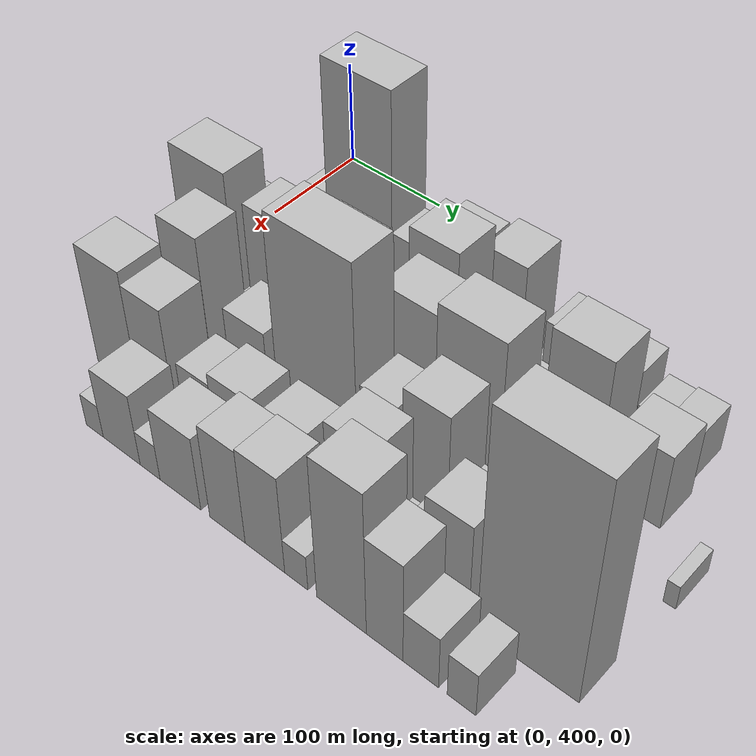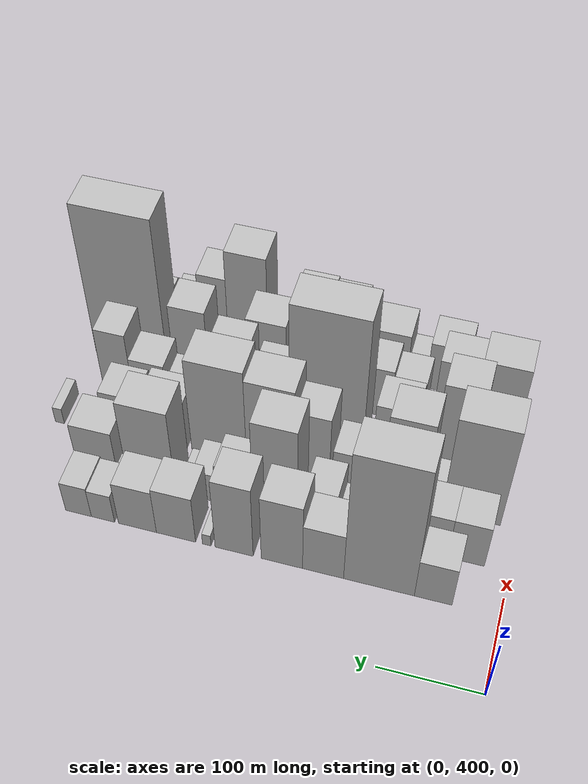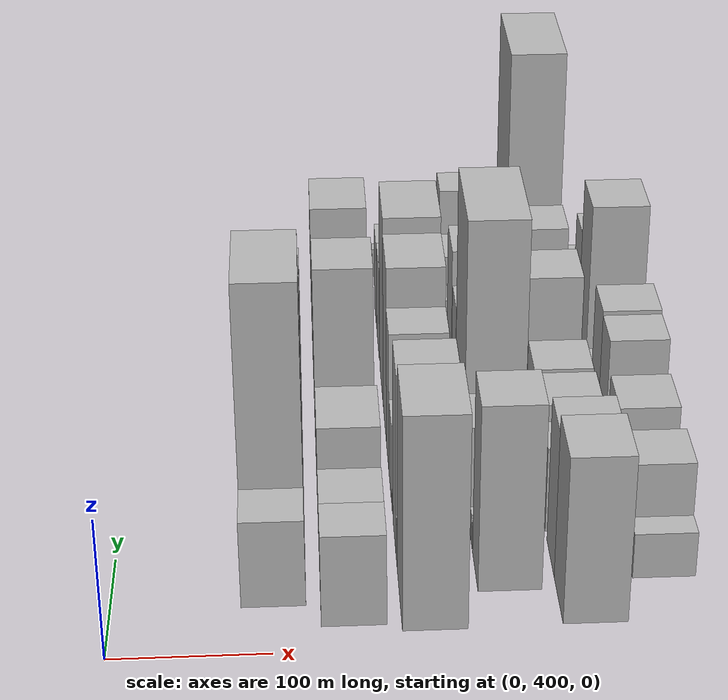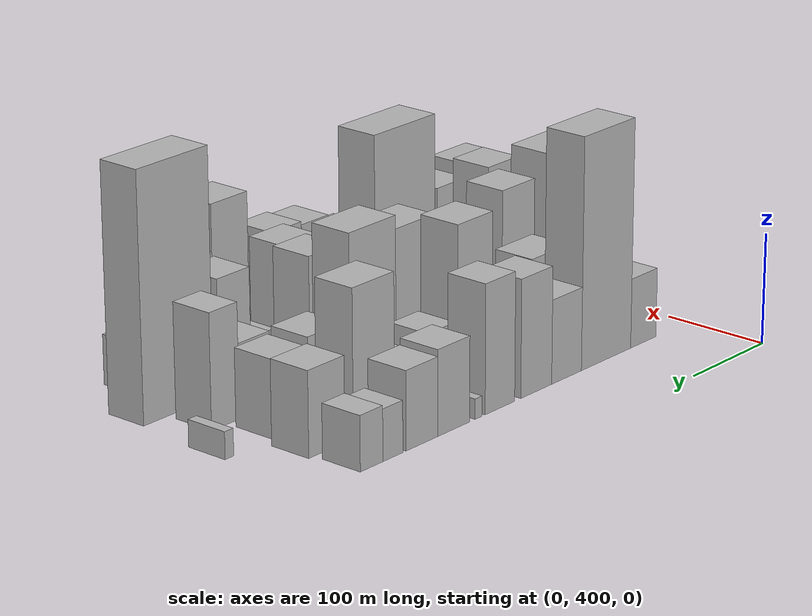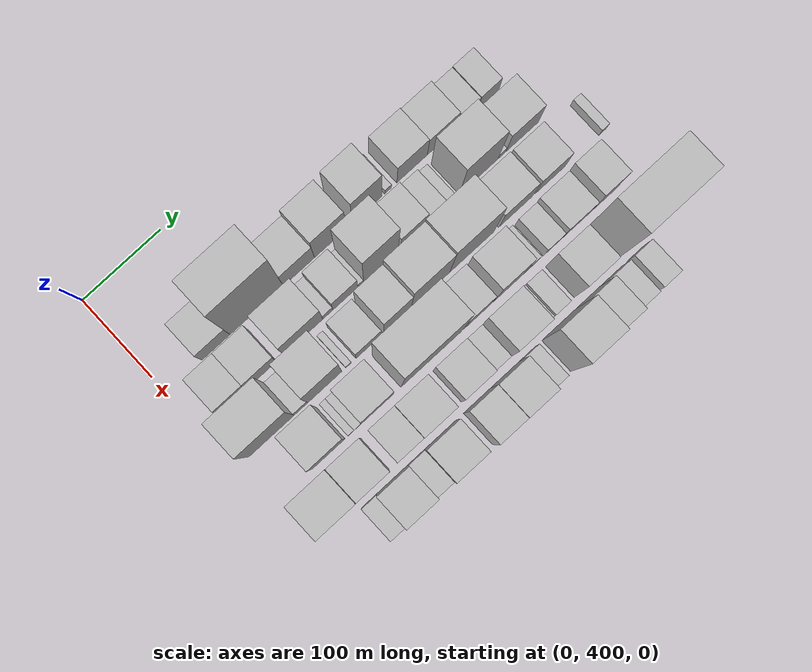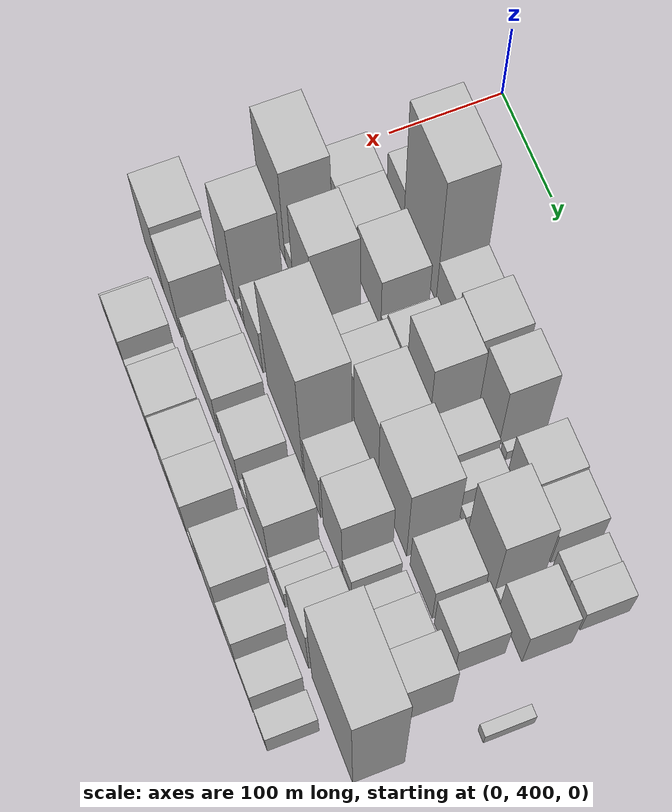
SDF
<sdf version="1.6">
 <world name="default">
  <model name="building_33">
   <static>1</static>
   <pose>100.0000 463.8958 0 0.000000 0.000000 0.000000</pose>
   <link name="link">
    <pose>0 0 31.50 0 0 0</pose>
    <collision name="collision"><geometry><box><size>40.0000 35.9964 63.0000</size></box></geometry></collision>
    <visual name="visual">
     <cast_shadows>0</cast_shadows>
     <geometry><box><size>40.0000 35.9964 63.0000</size></box></geometry>
     <material>
      <script>
       <uri>model://HANNAS_wall/materials/scripts</uri>
       <uri>model://HANNAS_wall/materials/textures</uri>
       <name>vrc/HANNAS_wall</name>
      </script>
     </material>
    </visual>
   </link>
  </model>
  <model name="building_34">
   <static>1</static>
   <pose>100.0000 516.1357 0 0.000000 0.000000 0.000000</pose>
   <link name="link">
    <pose>0 0 103.50 0 0 0</pose>
    <collision name="collision"><geometry><box><size>40.0000 68.4833 207.0000</size></box></geometry></collision>
    <visual name="visual">
     <cast_shadows>0</cast_shadows>
     <geometry><box><size>40.0000 68.4833 207.0000</size></box></geometry>
     <material>
      <script>
       <uri>model://HANNAS_wall/materials/scripts</uri>
       <uri>model://HANNAS_wall/materials/textures</uri>
       <name>vrc/HANNAS_wall</name>
      </script>
     </material>
    </visual>
   </link>
  </model>
  <model name="building_35">
   <static>1</static>
   <pose>100.0000 570.4830 0 0.000000 0.000000 0.000000</pose>
   <link name="link">
    <pose>0 0 37.50 0 0 0</pose>
    <collision name="collision"><geometry><box><size>40.0000 40.2113 75.0000</size></box></geometry></collision>
    <visual name="visual">
     <cast_shadows>0</cast_shadows>
     <geometry><box><size>40.0000 40.2113 75.0000</size></box></geometry>
     <material>
      <script>
       <uri>model://HANNAS_wall/materials/scripts</uri>
       <uri>model://HANNAS_wall/materials/textures</uri>
       <name>vrc/HANNAS_wall</name>
      </script>
     </material>
    </visual>
   </link>
  </model>
  <model name="building_36">
   <static>1</static>
   <pose>100.0000 611.0884 0 0.000000 0.000000 0.000000</pose>
   <link name="link">
    <pose>0 0 52.50 0 0 0</pose>
    <collision name="collision"><geometry><box><size>40.0000 40.9995 105.0000</size></box></geometry></collision>
    <visual name="visual">
     <cast_shadows>0</cast_shadows>
     <geometry><box><size>40.0000 40.9995 105.0000</size></box></geometry>
     <material>
      <script>
       <uri>model://HANNAS_wall/materials/scripts</uri>
       <uri>model://HANNAS_wall/materials/textures</uri>
       <name>vrc/HANNAS_wall</name>
      </script>
     </material>
    </visual>
   </link>
  </model>
  <model name="building_37">
   <static>1</static>
   <pose>100.0000 658.7133 0 0.000000 0.000000 0.000000</pose>
   <link name="link">
    <pose>0 0 57.00 0 0 0</pose>
    <collision name="collision"><geometry><box><size>40.0000 38.2504 114.0000</size></box></geometry></collision>
    <visual name="visual">
     <cast_shadows>0</cast_shadows>
     <geometry><box><size>40.0000 38.2504 114.0000</size></box></geometry>
     <material>
      <script>
       <uri>model://HANNAS_wall/materials/scripts</uri>
       <uri>model://HANNAS_wall/materials/textures</uri>
       <name>vrc/HANNAS_wall</name>
      </script>
     </material>
    </visual>
   </link>
  </model>
  <model name="building_38">
   <static>1</static>
   <pose>100.0000 686.2303 0 0.000000 0.000000 0.000000</pose>
   <link name="link">
    <pose>0 0 9.00 0 0 0</pose>
    <collision name="collision"><geometry><box><size>40.0000 8.7835 18.0000</size></box></geometry></collision>
    <visual name="visual">
     <cast_shadows>0</cast_shadows>
     <geometry><box><size>40.0000 8.7835 18.0000</size></box></geometry>
     <material>
      <script>
       <uri>model://HANNAS_wall/materials/scripts</uri>
       <uri>model://HANNAS_wall/materials/textures</uri>
       <name>vrc/HANNAS_wall</name>
      </script>
     </material>
    </visual>
   </link>
  </model>
  <model name="building_39">
   <static>1</static>
   <pose>100.0000 717.5890 0 0.000000 0.000000 0.000000</pose>
   <link name="link">
    <pose>0 0 37.50 0 0 0</pose>
    <collision name="collision"><geometry><box><size>40.0000 39.9340 75.0000</size></box></geometry></collision>
    <visual name="visual">
     <cast_shadows>0</cast_shadows>
     <geometry><box><size>40.0000 39.9340 75.0000</size></box></geometry>
     <material>
      <script>
       <uri>model://HANNAS_wall/materials/scripts</uri>
       <uri>model://HANNAS_wall/materials/textures</uri>
       <name>vrc/HANNAS_wall</name>
      </script>
     </material>
    </visual>
   </link>
  </model>
  <model name="building_40">
   <static>1</static>
   <pose>100.0000 757.1651 0 0.000000 0.000000 0.000000</pose>
   <link name="link">
    <pose>0 0 34.50 0 0 0</pose>
    <collision name="collision"><geometry><box><size>40.0000 39.2182 69.0000</size></box></geometry></collision>
    <visual name="visual">
     <cast_shadows>0</cast_shadows>
     <geometry><box><size>40.0000 39.2182 69.0000</size></box></geometry>
     <material>
      <script>
       <uri>model://HANNAS_wall/materials/scripts</uri>
       <uri>model://HANNAS_wall/materials/textures</uri>
       <name>vrc/HANNAS_wall</name>
      </script>
     </material>
    </visual>
   </link>
  </model>
  <model name="building_41">
   <static>1</static>
   <pose>100.0000 792.8322 0 0.000000 0.000000 0.000000</pose>
   <link name="link">
    <pose>0 0 22.50 0 0 0</pose>
    <collision name="collision"><geometry><box><size>40.0000 24.1159 45.0000</size></box></geometry></collision>
    <visual name="visual">
     <cast_shadows>0</cast_shadows>
     <geometry><box><size>40.0000 24.1159 45.0000</size></box></geometry>
     <material>
      <script>
       <uri>model://HANNAS_wall/materials/scripts</uri>
       <uri>model://HANNAS_wall/materials/textures</uri>
       <name>vrc/HANNAS_wall</name>
      </script>
     </material>
    </visual>
   </link>
  </model>
  <model name="building_42">
   <static>1</static>
   <pose>100.0000 818.3848 0 0.000000 0.000000 0.000000</pose>
   <link name="link">
    <pose>0 0 24.00 0 0 0</pose>
    <collision name="collision"><geometry><box><size>40.0000 26.9894 48.0000</size></box></geometry></collision>
    <visual name="visual">
     <cast_shadows>0</cast_shadows>
     <geometry><box><size>40.0000 26.9894 48.0000</size></box></geometry>
     <material>
      <script>
       <uri>model://HANNAS_wall/materials/scripts</uri>
       <uri>model://HANNAS_wall/materials/textures</uri>
       <name>vrc/HANNAS_wall</name>
      </script>
     </material>
    </visual>
   </link>
  </model>
  <model name="building_75">
   <static>1</static>
   <pose>149.0000 442.0141 0 0.000000 0.000000 0.000000</pose>
   <link name="link">
    <pose>0 0 33.00 0 0 0</pose>
    <collision name="collision"><geometry><box><size>40.0000 35.3231 66.0000</size></box></geometry></collision>
    <visual name="visual">
     <cast_shadows>0</cast_shadows>
     <geometry><box><size>40.0000 35.3231 66.0000</size></box></geometry>
     <material>
      <script>
       <uri>model://HANNAS_wall/materials/scripts</uri>
       <uri>model://HANNAS_wall/materials/textures</uri>
       <name>vrc/HANNAS_wall</name>
      </script>
     </material>
    </visual>
   </link>
  </model>
  <model name="building_76">
   <static>1</static>
   <pose>149.0000 478.5795 0 0.000000 0.000000 0.000000</pose>
   <link name="link">
    <pose>0 0 33.00 0 0 0</pose>
    <collision name="collision"><geometry><box><size>40.0000 37.8076 66.0000</size></box></geometry></collision>
    <visual name="visual">
     <cast_shadows>0</cast_shadows>
     <geometry><box><size>40.0000 37.8076 66.0000</size></box></geometry>
     <material>
      <script>
       <uri>model://HANNAS_wall/materials/scripts</uri>
       <uri>model://HANNAS_wall/materials/textures</uri>
       <name>vrc/HANNAS_wall</name>
      </script>
     </material>
    </visual>
   </link>
  </model>
  <model name="building_77">
   <static>1</static>
   <pose>149.0000 531.5656 0 0.000000 0.000000 0.000000</pose>
   <link name="link">
    <pose>0 0 45.00 0 0 0</pose>
    <collision name="collision"><geometry><box><size>40.0000 50.1646 90.0000</size></box></geometry></collision>
    <visual name="visual">
     <cast_shadows>0</cast_shadows>
     <geometry><box><size>40.0000 50.1646 90.0000</size></box></geometry>
     <material>
      <script>
       <uri>model://HANNAS_wall/materials/scripts</uri>
       <uri>model://HANNAS_wall/materials/textures</uri>
       <name>vrc/HANNAS_wall</name>
      </script>
     </material>
    </visual>
   </link>
  </model>
  <model name="building_78">
   <static>1</static>
   <pose>149.0000 563.2147 0 0.000000 0.000000 0.000000</pose>
   <link name="link">
    <pose>0 0 13.50 0 0 0</pose>
    <collision name="collision"><geometry><box><size>40.0000 13.1335 27.0000</size></box></geometry></collision>
    <visual name="visual">
     <cast_shadows>0</cast_shadows>
     <geometry><box><size>40.0000 13.1335 27.0000</size></box></geometry>
     <material>
      <script>
       <uri>model://HANNAS_wall/materials/scripts</uri>
       <uri>model://HANNAS_wall/materials/textures</uri>
       <name>vrc/HANNAS_wall</name>
      </script>
     </material>
    </visual>
   </link>
  </model>
  <model name="building_79">
   <static>1</static>
   <pose>149.0000 585.8208 0 0.000000 0.000000 0.000000</pose>
   <link name="link">
    <pose>0 0 30.00 0 0 0</pose>
    <collision name="collision"><geometry><box><size>40.0000 32.0787 60.0000</size></box></geometry></collision>
    <visual name="visual">
     <cast_shadows>0</cast_shadows>
     <geometry><box><size>40.0000 32.0787 60.0000</size></box></geometry>
     <material>
      <script>
       <uri>model://HANNAS_wall/materials/scripts</uri>
       <uri>model://HANNAS_wall/materials/textures</uri>
       <name>vrc/HANNAS_wall</name>
      </script>
     </material>
    </visual>
   </link>
  </model>
  <model name="building_80">
   <static>1</static>
   <pose>149.0000 605.6164 0 0.000000 0.000000 0.000000</pose>
   <link name="link">
    <pose>0 0 9.00 0 0 0</pose>
    <collision name="collision"><geometry><box><size>40.0000 7.5125 18.0000</size></box></geometry></collision>
    <visual name="visual">
     <cast_shadows>0</cast_shadows>
     <geometry><box><size>40.0000 7.5125 18.0000</size></box></geometry>
     <material>
      <script>
       <uri>model://HANNAS_wall/materials/scripts</uri>
       <uri>model://HANNAS_wall/materials/textures</uri>
       <name>vrc/HANNAS_wall</name>
      </script>
     </material>
    </visual>
   </link>
  </model>
  <model name="building_81">
   <static>1</static>
   <pose>149.0000 631.8215 0 0.000000 0.000000 0.000000</pose>
   <link name="link">
    <pose>0 0 73.50 0 0 0</pose>
    <collision name="collision"><geometry><box><size>40.0000 44.8977 147.0000</size></box></geometry></collision>
    <visual name="visual">
     <cast_shadows>0</cast_shadows>
     <geometry><box><size>40.0000 44.8977 147.0000</size></box></geometry>
     <material>
      <script>
       <uri>model://HANNAS_wall/materials/scripts</uri>
       <uri>model://HANNAS_wall/materials/textures</uri>
       <name>vrc/HANNAS_wall</name>
      </script>
     </material>
    </visual>
   </link>
  </model>
  <model name="building_82">
   <static>1</static>
   <pose>149.0000 674.8161 0 0.000000 0.000000 0.000000</pose>
   <link name="link">
    <pose>0 0 31.50 0 0 0</pose>
    <collision name="collision"><geometry><box><size>40.0000 35.0915 63.0000</size></box></geometry></collision>
    <visual name="visual">
     <cast_shadows>0</cast_shadows>
     <geometry><box><size>40.0000 35.0915 63.0000</size></box></geometry>
     <material>
      <script>
       <uri>model://HANNAS_wall/materials/scripts</uri>
       <uri>model://HANNAS_wall/materials/textures</uri>
       <name>vrc/HANNAS_wall</name>
      </script>
     </material>
    </visual>
   </link>
  </model>
  <model name="building_83">
   <static>1</static>
   <pose>149.0000 703.6260 0 0.000000 0.000000 0.000000</pose>
   <link name="link">
    <pose>0 0 22.50 0 0 0</pose>
    <collision name="collision"><geometry><box><size>40.0000 22.5281 45.0000</size></box></geometry></collision>
    <visual name="visual">
     <cast_shadows>0</cast_shadows>
     <geometry><box><size>40.0000 22.5281 45.0000</size></box></geometry>
     <material>
      <script>
       <uri>model://HANNAS_wall/materials/scripts</uri>
       <uri>model://HANNAS_wall/materials/textures</uri>
       <name>vrc/HANNAS_wall</name>
      </script>
     </material>
    </visual>
   </link>
  </model>
  <model name="building_84">
   <static>1</static>
   <pose>149.0000 723.0705 0 0.000000 0.000000 0.000000</pose>
   <link name="link">
    <pose>0 0 12.00 0 0 0</pose>
    <collision name="collision"><geometry><box><size>40.0000 10.3610 24.0000</size></box></geometry></collision>
    <visual name="visual">
     <cast_shadows>0</cast_shadows>
     <geometry><box><size>40.0000 10.3610 24.0000</size></box></geometry>
     <material>
      <script>
       <uri>model://HANNAS_wall/materials/scripts</uri>
       <uri>model://HANNAS_wall/materials/textures</uri>
       <name>vrc/HANNAS_wall</name>
      </script>
     </material>
    </visual>
   </link>
  </model>
  <model name="building_85">
   <static>1</static>
   <pose>149.0000 759.5131 0 0.000000 0.000000 0.000000</pose>
   <link name="link">
    <pose>0 0 64.50 0 0 0</pose>
    <collision name="collision"><geometry><box><size>40.0000 50.5241 129.0000</size></box></geometry></collision>
    <visual name="visual">
     <cast_shadows>0</cast_shadows>
     <geometry><box><size>40.0000 50.5241 129.0000</size></box></geometry>
     <material>
      <script>
       <uri>model://HANNAS_wall/materials/scripts</uri>
       <uri>model://HANNAS_wall/materials/textures</uri>
       <name>vrc/HANNAS_wall</name>
      </script>
     </material>
    </visual>
   </link>
  </model>
  <model name="building_86">
   <static>1</static>
   <pose>149.0000 789.8982 0 0.000000 0.000000 0.000000</pose>
   <link name="link">
    <pose>0 0 10.50 0 0 0</pose>
    <collision name="collision"><geometry><box><size>40.0000 10.2461 21.0000</size></box></geometry></collision>
    <visual name="visual">
     <cast_shadows>0</cast_shadows>
     <geometry><box><size>40.0000 10.2461 21.0000</size></box></geometry>
     <material>
      <script>
       <uri>model://HANNAS_wall/materials/scripts</uri>
       <uri>model://HANNAS_wall/materials/textures</uri>
       <name>vrc/HANNAS_wall</name>
      </script>
     </material>
    </visual>
   </link>
  </model>
  <model name="building_87">
   <static>1</static>
   <pose>149.0000 816.5176 0 0.000000 0.000000 0.000000</pose>
   <link name="link">
    <pose>0 0 37.50 0 0 0</pose>
    <collision name="collision"><geometry><box><size>40.0000 42.9927 75.0000</size></box></geometry></collision>
    <visual name="visual">
     <cast_shadows>0</cast_shadows>
     <geometry><box><size>40.0000 42.9927 75.0000</size></box></geometry>
     <material>
      <script>
       <uri>model://HANNAS_wall/materials/scripts</uri>
       <uri>model://HANNAS_wall/materials/textures</uri>
       <name>vrc/HANNAS_wall</name>
      </script>
     </material>
    </visual>
   </link>
  </model>
  <model name="building_121">
   <static>1</static>
   <pose>198.0000 446.6114 0 0.000000 0.000000 0.000000</pose>
   <link name="link">
    <pose>0 0 76.50 0 0 0</pose>
    <collision name="collision"><geometry><box><size>40.0000 58.0837 153.0000</size></box></geometry></collision>
    <visual name="visual">
     <cast_shadows>0</cast_shadows>
     <geometry><box><size>40.0000 58.0837 153.0000</size></box></geometry>
     <material>
      <script>
       <uri>model://HANNAS_wall/materials/scripts</uri>
       <uri>model://HANNAS_wall/materials/textures</uri>
       <name>vrc/HANNAS_wall</name>
      </script>
     </material>
    </visual>
   </link>
  </model>
  <model name="building_122">
   <static>1</static>
   <pose>198.0000 484.1990 0 0.000000 0.000000 0.000000</pose>
   <link name="link">
    <pose>0 0 16.50 0 0 0</pose>
    <collision name="collision"><geometry><box><size>40.0000 17.0915 33.0000</size></box></geometry></collision>
    <visual name="visual">
     <cast_shadows>0</cast_shadows>
     <geometry><box><size>40.0000 17.0915 33.0000</size></box></geometry>
     <material>
      <script>
       <uri>model://HANNAS_wall/materials/scripts</uri>
       <uri>model://HANNAS_wall/materials/textures</uri>
       <name>vrc/HANNAS_wall</name>
      </script>
     </material>
    </visual>
   </link>
  </model>
  <model name="building_123">
   <static>1</static>
   <pose>198.0000 514.5575 0 0.000000 0.000000 0.000000</pose>
   <link name="link">
    <pose>0 0 67.50 0 0 0</pose>
    <collision name="collision"><geometry><box><size>40.0000 43.6255 135.0000</size></box></geometry></collision>
    <visual name="visual">
     <cast_shadows>0</cast_shadows>
     <geometry><box><size>40.0000 43.6255 135.0000</size></box></geometry>
     <material>
      <script>
       <uri>model://HANNAS_wall/materials/scripts</uri>
       <uri>model://HANNAS_wall/materials/textures</uri>
       <name>vrc/HANNAS_wall</name>
      </script>
     </material>
    </visual>
   </link>
  </model>
  <model name="building_124">
   <static>1</static>
   <pose>198.0000 545.0130 0 0.000000 0.000000 0.000000</pose>
   <link name="link">
    <pose>0 0 7.50 0 0 0</pose>
    <collision name="collision"><geometry><box><size>40.0000 7.2856 15.0000</size></box></geometry></collision>
    <visual name="visual">
     <cast_shadows>0</cast_shadows>
     <geometry><box><size>40.0000 7.2856 15.0000</size></box></geometry>
     <material>
      <script>
       <uri>model://HANNAS_wall/materials/scripts</uri>
       <uri>model://HANNAS_wall/materials/textures</uri>
       <name>vrc/HANNAS_wall</name>
      </script>
     </material>
    </visual>
   </link>
  </model>
  <model name="building_125">
   <static>1</static>
   <pose>198.0000 570.8861 0 0.000000 0.000000 0.000000</pose>
   <link name="link">
    <pose>0 0 30.00 0 0 0</pose>
    <collision name="collision"><geometry><box><size>40.0000 32.4605 60.0000</size></box></geometry></collision>
    <visual name="visual">
     <cast_shadows>0</cast_shadows>
     <geometry><box><size>40.0000 32.4605 60.0000</size></box></geometry>
     <material>
      <script>
       <uri>model://HANNAS_wall/materials/scripts</uri>
       <uri>model://HANNAS_wall/materials/textures</uri>
       <name>vrc/HANNAS_wall</name>
      </script>
     </material>
    </visual>
   </link>
  </model>
  <model name="building_126">
   <static>1</static>
   <pose>198.0000 607.9021 0 0.000000 0.000000 0.000000</pose>
   <link name="link">
    <pose>0 0 54.00 0 0 0</pose>
    <collision name="collision"><geometry><box><size>40.0000 35.5715 108.0000</size></box></geometry></collision>
    <visual name="visual">
     <cast_shadows>0</cast_shadows>
     <geometry><box><size>40.0000 35.5715 108.0000</size></box></geometry>
     <material>
      <script>
       <uri>model://HANNAS_wall/materials/scripts</uri>
       <uri>model://HANNAS_wall/materials/textures</uri>
       <name>vrc/HANNAS_wall</name>
      </script>
     </material>
    </visual>
   </link>
  </model>
  <model name="building_127">
   <static>1</static>
   <pose>198.0000 650.6006 0 0.000000 0.000000 0.000000</pose>
   <link name="link">
    <pose>0 0 69.00 0 0 0</pose>
    <collision name="collision"><geometry><box><size>40.0000 49.8255 138.0000</size></box></geometry></collision>
    <visual name="visual">
     <cast_shadows>0</cast_shadows>
     <geometry><box><size>40.0000 49.8255 138.0000</size></box></geometry>
     <material>
      <script>
       <uri>model://HANNAS_wall/materials/scripts</uri>
       <uri>model://HANNAS_wall/materials/textures</uri>
       <name>vrc/HANNAS_wall</name>
      </script>
     </material>
    </visual>
   </link>
  </model>
  <model name="building_128">
   <static>1</static>
   <pose>198.0000 704.4383 0 0.000000 0.000000 0.000000</pose>
   <link name="link">
    <pose>0 0 75.00 0 0 0</pose>
    <collision name="collision"><geometry><box><size>40.0000 57.8499 150.0000</size></box></geometry></collision>
    <visual name="visual">
     <cast_shadows>0</cast_shadows>
     <geometry><box><size>40.0000 57.8499 150.0000</size></box></geometry>
     <material>
      <script>
       <uri>model://HANNAS_wall/materials/scripts</uri>
       <uri>model://HANNAS_wall/materials/textures</uri>
       <name>vrc/HANNAS_wall</name>
      </script>
     </material>
    </visual>
   </link>
  </model>
  <model name="building_129">
   <static>1</static>
   <pose>198.0000 762.3054 0 0.000000 0.000000 0.000000</pose>
   <link name="link">
    <pose>0 0 37.50 0 0 0</pose>
    <collision name="collision"><geometry><box><size>40.0000 43.8844 75.0000</size></box></geometry></collision>
    <visual name="visual">
     <cast_shadows>0</cast_shadows>
     <geometry><box><size>40.0000 43.8844 75.0000</size></box></geometry>
     <material>
      <script>
       <uri>model://HANNAS_wall/materials/scripts</uri>
       <uri>model://HANNAS_wall/materials/textures</uri>
       <name>vrc/HANNAS_wall</name>
      </script>
     </material>
    </visual>
   </link>
  </model>
  <model name="building_130">
   <static>1</static>
   <pose>198.0000 807.8751 0 0.000000 0.000000 0.000000</pose>
   <link name="link">
    <pose>0 0 34.50 0 0 0</pose>
    <collision name="collision"><geometry><box><size>40.0000 39.2550 69.0000</size></box></geometry></collision>
    <visual name="visual">
     <cast_shadows>0</cast_shadows>
     <geometry><box><size>40.0000 39.2550 69.0000</size></box></geometry>
     <material>
      <script>
       <uri>model://HANNAS_wall/materials/scripts</uri>
       <uri>model://HANNAS_wall/materials/textures</uri>
       <name>vrc/HANNAS_wall</name>
      </script>
     </material>
    </visual>
   </link>
  </model>
  <model name="building_131">
   <static>1</static>
   <pose>198.0000 877.4283 0 0.000000 0.000000 0.000000</pose>
   <link name="link">
    <pose>0 0 12.00 0 0 0</pose>
    <collision name="collision"><geometry><box><size>40.0000 9.9505 24.0000</size></box></geometry></collision>
    <visual name="visual">
     <cast_shadows>0</cast_shadows>
     <geometry><box><size>40.0000 9.9505 24.0000</size></box></geometry>
     <material>
      <script>
       <uri>model://HANNAS_wall/materials/scripts</uri>
       <uri>model://HANNAS_wall/materials/textures</uri>
       <name>vrc/HANNAS_wall</name>
      </script>
     </material>
    </visual>
   </link>
  </model>
  <model name="building_168">
   <static>1</static>
   <pose>247.0000 475.1241 0 0.000000 0.000000 0.000000</pose>
   <link name="link">
    <pose>0 0 67.50 0 0 0</pose>
    <collision name="collision"><geometry><box><size>40.0000 41.0963 135.0000</size></box></geometry></collision>
    <visual name="visual">
     <cast_shadows>0</cast_shadows>
     <geometry><box><size>40.0000 41.0963 135.0000</size></box></geometry>
     <material>
      <script>
       <uri>model://HANNAS_wall/materials/scripts</uri>
       <uri>model://HANNAS_wall/materials/textures</uri>
       <name>vrc/HANNAS_wall</name>
      </script>
     </material>
    </visual>
   </link>
  </model>
  <model name="building_169">
   <static>1</static>
   <pose>247.0000 503.4959 0 0.000000 0.000000 0.000000</pose>
   <link name="link">
    <pose>0 0 9.00 0 0 0</pose>
    <collision name="collision"><geometry><box><size>40.0000 7.6473 18.0000</size></box></geometry></collision>
    <visual name="visual">
     <cast_shadows>0</cast_shadows>
     <geometry><box><size>40.0000 7.6473 18.0000</size></box></geometry>
     <material>
      <script>
       <uri>model://HANNAS_wall/materials/scripts</uri>
       <uri>model://HANNAS_wall/materials/textures</uri>
       <name>vrc/HANNAS_wall</name>
      </script>
     </material>
    </visual>
   </link>
  </model>
  <model name="building_170">
   <static>1</static>
   <pose>247.0000 511.8338 0 0.000000 0.000000 0.000000</pose>
   <link name="link">
    <pose>0 0 10.50 0 0 0</pose>
    <collision name="collision"><geometry><box><size>40.0000 9.0287 21.0000</size></box></geometry></collision>
    <visual name="visual">
     <cast_shadows>0</cast_shadows>
     <geometry><box><size>40.0000 9.0287 21.0000</size></box></geometry>
     <material>
      <script>
       <uri>model://HANNAS_wall/materials/scripts</uri>
       <uri>model://HANNAS_wall/materials/textures</uri>
       <name>vrc/HANNAS_wall</name>
      </script>
     </material>
    </visual>
   </link>
  </model>
  <model name="building_171">
   <static>1</static>
   <pose>247.0000 536.9219 0 0.000000 0.000000 0.000000</pose>
   <link name="link">
    <pose>0 0 40.50 0 0 0</pose>
    <collision name="collision"><geometry><box><size>40.0000 41.1475 81.0000</size></box></geometry></collision>
    <visual name="visual">
     <cast_shadows>0</cast_shadows>
     <geometry><box><size>40.0000 41.1475 81.0000</size></box></geometry>
     <material>
      <script>
       <uri>model://HANNAS_wall/materials/scripts</uri>
       <uri>model://HANNAS_wall/materials/textures</uri>
       <name>vrc/HANNAS_wall</name>
      </script>
     </material>
    </visual>
   </link>
  </model>
  <model name="building_172">
   <static>1</static>
   <pose>247.0000 606.4196 0 0.000000 0.000000 0.000000</pose>
   <link name="link">
    <pose>0 0 100.50 0 0 0</pose>
    <collision name="collision"><geometry><box><size>40.0000 77.8477 201.0000</size></box></geometry></collision>
    <visual name="visual">
     <cast_shadows>0</cast_shadows>
     <geometry><box><size>40.0000 77.8477 201.0000</size></box></geometry>
     <material>
      <script>
       <uri>model://HANNAS_wall/materials/scripts</uri>
       <uri>model://HANNAS_wall/materials/textures</uri>
       <name>vrc/HANNAS_wall</name>
      </script>
     </material>
    </visual>
   </link>
  </model>
  <model name="building_173">
   <static>1</static>
   <pose>247.0000 665.8490 0 0.000000 0.000000 0.000000</pose>
   <link name="link">
    <pose>0 0 46.50 0 0 0</pose>
    <collision name="collision"><geometry><box><size>40.0000 33.0111 93.0000</size></box></geometry></collision>
    <visual name="visual">
     <cast_shadows>0</cast_shadows>
     <geometry><box><size>40.0000 33.0111 93.0000</size></box></geometry>
     <material>
      <script>
       <uri>model://HANNAS_wall/materials/scripts</uri>
       <uri>model://HANNAS_wall/materials/textures</uri>
       <name>vrc/HANNAS_wall</name>
      </script>
     </material>
    </visual>
   </link>
  </model>
  <model name="building_174">
   <static>1</static>
   <pose>247.0000 707.5844 0 0.000000 0.000000 0.000000</pose>
   <link name="link">
    <pose>0 0 58.50 0 0 0</pose>
    <collision name="collision"><geometry><box><size>40.0000 40.4597 117.0000</size></box></geometry></collision>
    <visual name="visual">
     <cast_shadows>0</cast_shadows>
     <geometry><box><size>40.0000 40.4597 117.0000</size></box></geometry>
     <material>
      <script>
       <uri>model://HANNAS_wall/materials/scripts</uri>
       <uri>model://HANNAS_wall/materials/textures</uri>
       <name>vrc/HANNAS_wall</name>
      </script>
     </material>
    </visual>
   </link>
  </model>
  <model name="building_175">
   <static>1</static>
   <pose>247.0000 736.8570 0 0.000000 0.000000 0.000000</pose>
   <link name="link">
    <pose>0 0 18.00 0 0 0</pose>
    <collision name="collision"><geometry><box><size>40.0000 18.0855 36.0000</size></box></geometry></collision>
    <visual name="visual">
     <cast_shadows>0</cast_shadows>
     <geometry><box><size>40.0000 18.0855 36.0000</size></box></geometry>
     <material>
      <script>
       <uri>model://HANNAS_wall/materials/scripts</uri>
       <uri>model://HANNAS_wall/materials/textures</uri>
       <name>vrc/HANNAS_wall</name>
      </script>
     </material>
    </visual>
   </link>
  </model>
  <model name="building_176">
   <static>1</static>
   <pose>247.0000 764.6860 0 0.000000 0.000000 0.000000</pose>
   <link name="link">
    <pose>0 0 21.00 0 0 0</pose>
    <collision name="collision"><geometry><box><size>40.0000 23.5726 42.0000</size></box></geometry></collision>
    <visual name="visual">
     <cast_shadows>0</cast_shadows>
     <geometry><box><size>40.0000 23.5726 42.0000</size></box></geometry>
     <material>
      <script>
       <uri>model://HANNAS_wall/materials/scripts</uri>
       <uri>model://HANNAS_wall/materials/textures</uri>
       <name>vrc/HANNAS_wall</name>
      </script>
     </material>
    </visual>
   </link>
  </model>
  <model name="building_177">
   <static>1</static>
   <pose>247.0000 795.1906 0 0.000000 0.000000 0.000000</pose>
   <link name="link">
    <pose>0 0 33.00 0 0 0</pose>
    <collision name="collision"><geometry><box><size>40.0000 37.4366 66.0000</size></box></geometry></collision>
    <visual name="visual">
     <cast_shadows>0</cast_shadows>
     <geometry><box><size>40.0000 37.4366 66.0000</size></box></geometry>
     <material>
      <script>
       <uri>model://HANNAS_wall/materials/scripts</uri>
       <uri>model://HANNAS_wall/materials/textures</uri>
       <name>vrc/HANNAS_wall</name>
      </script>
     </material>
    </visual>
   </link>
  </model>
  <model name="building_178">
   <static>1</static>
   <pose>247.0000 830.2362 0 0.000000 0.000000 0.000000</pose>
   <link name="link">
    <pose>0 0 51.00 0 0 0</pose>
    <collision name="collision"><geometry><box><size>40.0000 32.6545 102.0000</size></box></geometry></collision>
    <visual name="visual">
     <cast_shadows>0</cast_shadows>
     <geometry><box><size>40.0000 32.6545 102.0000</size></box></geometry>
     <material>
      <script>
       <uri>model://HANNAS_wall/materials/scripts</uri>
       <uri>model://HANNAS_wall/materials/textures</uri>
       <name>vrc/HANNAS_wall</name>
      </script>
     </material>
    </visual>
   </link>
  </model>
  <model name="building_212">
   <static>1</static>
   <pose>296.0000 443.0182 0 0.000000 0.000000 0.000000</pose>
   <link name="link">
    <pose>0 0 60.00 0 0 0</pose>
    <collision name="collision"><geometry><box><size>40.0000 47.1544 120.0000</size></box></geometry></collision>
    <visual name="visual">
     <cast_shadows>0</cast_shadows>
     <geometry><box><size>40.0000 47.1544 120.0000</size></box></geometry>
     <material>
      <script>
       <uri>model://HANNAS_wall/materials/scripts</uri>
       <uri>model://HANNAS_wall/materials/textures</uri>
       <name>vrc/HANNAS_wall</name>
      </script>
     </material>
    </visual>
   </link>
  </model>
  <model name="building_213">
   <static>1</static>
   <pose>296.0000 486.7247 0 0.000000 0.000000 0.000000</pose>
   <link name="link">
    <pose>0 0 54.00 0 0 0</pose>
    <collision name="collision"><geometry><box><size>40.0000 40.2586 108.0000</size></box></geometry></collision>
    <visual name="visual">
     <cast_shadows>0</cast_shadows>
     <geometry><box><size>40.0000 40.2586 108.0000</size></box></geometry>
     <material>
      <script>
       <uri>model://HANNAS_wall/materials/scripts</uri>
       <uri>model://HANNAS_wall/materials/textures</uri>
       <name>vrc/HANNAS_wall</name>
      </script>
     </material>
    </visual>
   </link>
  </model>
  <model name="building_214">
   <static>1</static>
   <pose>296.0000 533.3447 0 0.000000 0.000000 0.000000</pose>
   <link name="link">
    <pose>0 0 31.50 0 0 0</pose>
    <collision name="collision"><geometry><box><size>40.0000 32.9815 63.0000</size></box></geometry></collision>
    <visual name="visual">
     <cast_shadows>0</cast_shadows>
     <geometry><box><size>40.0000 32.9815 63.0000</size></box></geometry>
     <material>
      <script>
       <uri>model://HANNAS_wall/materials/scripts</uri>
       <uri>model://HANNAS_wall/materials/textures</uri>
       <name>vrc/HANNAS_wall</name>
      </script>
     </material>
    </visual>
   </link>
  </model>
  <model name="building_215">
   <static>1</static>
   <pose>296.0000 570.5655 0 0.000000 0.000000 0.000000</pose>
   <link name="link">
    <pose>0 0 37.50 0 0 0</pose>
    <collision name="collision"><geometry><box><size>40.0000 41.4600 75.0000</size></box></geometry></collision>
    <visual name="visual">
     <cast_shadows>0</cast_shadows>
     <geometry><box><size>40.0000 41.4600 75.0000</size></box></geometry>
     <material>
      <script>
       <uri>model://HANNAS_wall/materials/scripts</uri>
       <uri>model://HANNAS_wall/materials/textures</uri>
       <name>vrc/HANNAS_wall</name>
      </script>
     </material>
    </visual>
   </link>
  </model>
  <model name="building_216">
   <static>1</static>
   <pose>296.0000 619.8694 0 0.000000 0.000000 0.000000</pose>
   <link name="link">
    <pose>0 0 36.00 0 0 0</pose>
    <collision name="collision"><geometry><box><size>40.0000 39.1478 72.0000</size></box></geometry></collision>
    <visual name="visual">
     <cast_shadows>0</cast_shadows>
     <geometry><box><size>40.0000 39.1478 72.0000</size></box></geometry>
     <material>
      <script>
       <uri>model://HANNAS_wall/materials/scripts</uri>
       <uri>model://HANNAS_wall/materials/textures</uri>
       <name>vrc/HANNAS_wall</name>
      </script>
     </material>
    </visual>
   </link>
  </model>
  <model name="building_217">
   <static>1</static>
   <pose>296.0000 652.2119 0 0.000000 0.000000 0.000000</pose>
   <link name="link">
    <pose>0 0 16.50 0 0 0</pose>
    <collision name="collision"><geometry><box><size>40.0000 19.5373 33.0000</size></box></geometry></collision>
    <visual name="visual">
     <cast_shadows>0</cast_shadows>
     <geometry><box><size>40.0000 19.5373 33.0000</size></box></geometry>
     <material>
      <script>
       <uri>model://HANNAS_wall/materials/scripts</uri>
       <uri>model://HANNAS_wall/materials/textures</uri>
       <name>vrc/HANNAS_wall</name>
      </script>
     </material>
    </visual>
   </link>
  </model>
  <model name="building_218">
   <static>1</static>
   <pose>296.0000 683.0886 0 0.000000 0.000000 0.000000</pose>
   <link name="link">
    <pose>0 0 54.00 0 0 0</pose>
    <collision name="collision"><geometry><box><size>40.0000 42.2160 108.0000</size></box></geometry></collision>
    <visual name="visual">
     <cast_shadows>0</cast_shadows>
     <geometry><box><size>40.0000 42.2160 108.0000</size></box></geometry>
     <material>
      <script>
       <uri>model://HANNAS_wall/materials/scripts</uri>
       <uri>model://HANNAS_wall/materials/textures</uri>
       <name>vrc/HANNAS_wall</name>
      </script>
     </material>
    </visual>
   </link>
  </model>
  <model name="building_219">
   <static>1</static>
   <pose>296.0000 710.9089 0 0.000000 0.000000 0.000000</pose>
   <link name="link">
    <pose>0 0 13.50 0 0 0</pose>
    <collision name="collision"><geometry><box><size>40.0000 13.4247 27.0000</size></box></geometry></collision>
    <visual name="visual">
     <cast_shadows>0</cast_shadows>
     <geometry><box><size>40.0000 13.4247 27.0000</size></box></geometry>
     <material>
      <script>
       <uri>model://HANNAS_wall/materials/scripts</uri>
       <uri>model://HANNAS_wall/materials/textures</uri>
       <name>vrc/HANNAS_wall</name>
      </script>
     </material>
    </visual>
   </link>
  </model>
  <model name="building_220">
   <static>1</static>
   <pose>296.0000 727.4066 0 0.000000 0.000000 0.000000</pose>
   <link name="link">
    <pose>0 0 19.50 0 0 0</pose>
    <collision name="collision"><geometry><box><size>40.0000 19.5707 39.0000</size></box></geometry></collision>
    <visual name="visual">
     <cast_shadows>0</cast_shadows>
     <geometry><box><size>40.0000 19.5707 39.0000</size></box></geometry>
     <material>
      <script>
       <uri>model://HANNAS_wall/materials/scripts</uri>
       <uri>model://HANNAS_wall/materials/textures</uri>
       <name>vrc/HANNAS_wall</name>
      </script>
     </material>
    </visual>
   </link>
  </model>
  <model name="building_221">
   <static>1</static>
   <pose>296.0000 766.6545 0 0.000000 0.000000 0.000000</pose>
   <link name="link">
    <pose>0 0 51.00 0 0 0</pose>
    <collision name="collision"><geometry><box><size>40.0000 38.9251 102.0000</size></box></geometry></collision>
    <visual name="visual">
     <cast_shadows>0</cast_shadows>
     <geometry><box><size>40.0000 38.9251 102.0000</size></box></geometry>
     <material>
      <script>
       <uri>model://HANNAS_wall/materials/scripts</uri>
       <uri>model://HANNAS_wall/materials/textures</uri>
       <name>vrc/HANNAS_wall</name>
      </script>
     </material>
    </visual>
   </link>
  </model>
  <model name="building_222">
   <static>1</static>
   <pose>296.0000 833.8933 0 0.000000 0.000000 0.000000</pose>
   <link name="link">
    <pose>0 0 109.50 0 0 0</pose>
    <collision name="collision"><geometry><box><size>40.0000 81.5524 219.0000</size></box></geometry></collision>
    <visual name="visual">
     <cast_shadows>0</cast_shadows>
     <geometry><box><size>40.0000 81.5524 219.0000</size></box></geometry>
     <material>
      <script>
       <uri>model://HANNAS_wall/materials/scripts</uri>
       <uri>model://HANNAS_wall/materials/textures</uri>
       <name>vrc/HANNAS_wall</name>
      </script>
     </material>
    </visual>
   </link>
  </model>
  <model name="building_258">
   <static>1</static>
   <pose>345.0000 472.9228 0 0.000000 0.000000 0.000000</pose>
   <link name="link">
    <pose>0 0 16.50 0 0 0</pose>
    <collision name="collision"><geometry><box><size>40.0000 19.0335 33.0000</size></box></geometry></collision>
    <visual name="visual">
     <cast_shadows>0</cast_shadows>
     <geometry><box><size>40.0000 19.0335 33.0000</size></box></geometry>
     <material>
      <script>
       <uri>model://HANNAS_wall/materials/scripts</uri>
       <uri>model://HANNAS_wall/materials/textures</uri>
       <name>vrc/HANNAS_wall</name>
      </script>
     </material>
    </visual>
   </link>
  </model>
  <model name="building_259">
   <static>1</static>
   <pose>345.0000 502.5234 0 0.000000 0.000000 0.000000</pose>
   <link name="link">
    <pose>0 0 36.00 0 0 0</pose>
    <collision name="collision"><geometry><box><size>40.0000 40.1677 72.0000</size></box></geometry></collision>
    <visual name="visual">
     <cast_shadows>0</cast_shadows>
     <geometry><box><size>40.0000 40.1677 72.0000</size></box></geometry>
     <material>
      <script>
       <uri>model://HANNAS_wall/materials/scripts</uri>
       <uri>model://HANNAS_wall/materials/textures</uri>
       <name>vrc/HANNAS_wall</name>
      </script>
     </material>
    </visual>
   </link>
  </model>
  <model name="building_260">
   <static>1</static>
   <pose>345.0000 533.1188 0 0.000000 0.000000 0.000000</pose>
   <link name="link">
    <pose>0 0 18.00 0 0 0</pose>
    <collision name="collision"><geometry><box><size>40.0000 21.0232 36.0000</size></box></geometry></collision>
    <visual name="visual">
     <cast_shadows>0</cast_shadows>
     <geometry><box><size>40.0000 21.0232 36.0000</size></box></geometry>
     <material>
      <script>
       <uri>model://HANNAS_wall/materials/scripts</uri>
       <uri>model://HANNAS_wall/materials/textures</uri>
       <name>vrc/HANNAS_wall</name>
      </script>
     </material>
    </visual>
   </link>
  </model>
  <model name="building_261">
   <static>1</static>
   <pose>345.0000 564.5662 0 0.000000 0.000000 0.000000</pose>
   <link name="link">
    <pose>0 0 37.50 0 0 0</pose>
    <collision name="collision"><geometry><box><size>40.0000 41.8716 75.0000</size></box></geometry></collision>
    <visual name="visual">
     <cast_shadows>0</cast_shadows>
     <geometry><box><size>40.0000 41.8716 75.0000</size></box></geometry>
     <material>
      <script>
       <uri>model://HANNAS_wall/materials/scripts</uri>
       <uri>model://HANNAS_wall/materials/textures</uri>
       <name>vrc/HANNAS_wall</name>
      </script>
     </material>
    </visual>
   </link>
  </model>
  <model name="building_262">
   <static>1</static>
   <pose>345.0000 611.9518 0 0.000000 0.000000 0.000000</pose>
   <link name="link">
    <pose>0 0 48.00 0 0 0</pose>
    <collision name="collision"><geometry><box><size>40.0000 34.8994 96.0000</size></box></geometry></collision>
    <visual name="visual">
     <cast_shadows>0</cast_shadows>
     <geometry><box><size>40.0000 34.8994 96.0000</size></box></geometry>
     <material>
      <script>
       <uri>model://HANNAS_wall/materials/scripts</uri>
       <uri>model://HANNAS_wall/materials/textures</uri>
       <name>vrc/HANNAS_wall</name>
      </script>
     </material>
    </visual>
   </link>
  </model>
  <model name="building_263">
   <static>1</static>
   <pose>345.0000 648.1949 0 0.000000 0.000000 0.000000</pose>
   <link name="link">
    <pose>0 0 49.50 0 0 0</pose>
    <collision name="collision"><geometry><box><size>40.0000 37.5869 99.0000</size></box></geometry></collision>
    <visual name="visual">
     <cast_shadows>0</cast_shadows>
     <geometry><box><size>40.0000 37.5869 99.0000</size></box></geometry>
     <material>
      <script>
       <uri>model://HANNAS_wall/materials/scripts</uri>
       <uri>model://HANNAS_wall/materials/textures</uri>
       <name>vrc/HANNAS_wall</name>
      </script>
     </material>
    </visual>
   </link>
  </model>
  <model name="building_264">
   <static>1</static>
   <pose>345.0000 677.6976 0 0.000000 0.000000 0.000000</pose>
   <link name="link">
    <pose>0 0 18.00 0 0 0</pose>
    <collision name="collision"><geometry><box><size>40.0000 21.4185 36.0000</size></box></geometry></collision>
    <visual name="visual">
     <cast_shadows>0</cast_shadows>
     <geometry><box><size>40.0000 21.4185 36.0000</size></box></geometry>
     <material>
      <script>
       <uri>model://HANNAS_wall/materials/scripts</uri>
       <uri>model://HANNAS_wall/materials/textures</uri>
       <name>vrc/HANNAS_wall</name>
      </script>
     </material>
    </visual>
   </link>
  </model>
  <model name="building_265">
   <static>1</static>
   <pose>345.0000 718.4599 0 0.000000 0.000000 0.000000</pose>
   <link name="link">
    <pose>0 0 72.00 0 0 0</pose>
    <collision name="collision"><geometry><box><size>40.0000 44.1062 144.0000</size></box></geometry></collision>
    <visual name="visual">
     <cast_shadows>0</cast_shadows>
     <geometry><box><size>40.0000 44.1062 144.0000</size></box></geometry>
     <material>
      <script>
       <uri>model://HANNAS_wall/materials/scripts</uri>
       <uri>model://HANNAS_wall/materials/textures</uri>
       <name>vrc/HANNAS_wall</name>
      </script>
     </material>
    </visual>
   </link>
  </model>
  <model name="building_266">
   <static>1</static>
   <pose>345.0000 756.2157 0 0.000000 0.000000 0.000000</pose>
   <link name="link">
    <pose>0 0 51.00 0 0 0</pose>
    <collision name="collision"><geometry><box><size>40.0000 31.4055 102.0000</size></box></geometry></collision>
    <visual name="visual">
     <cast_shadows>0</cast_shadows>
     <geometry><box><size>40.0000 31.4055 102.0000</size></box></geometry>
     <material>
      <script>
       <uri>model://HANNAS_wall/materials/scripts</uri>
       <uri>model://HANNAS_wall/materials/textures</uri>
       <name>vrc/HANNAS_wall</name>
      </script>
     </material>
    </visual>
   </link>
  </model>
  <model name="building_267">
   <static>1</static>
   <pose>345.0000 786.6159 0 0.000000 0.000000 0.000000</pose>
   <link name="link">
    <pose>0 0 27.00 0 0 0</pose>
    <collision name="collision"><geometry><box><size>40.0000 29.3949 54.0000</size></box></geometry></collision>
    <visual name="visual">
     <cast_shadows>0</cast_shadows>
     <geometry><box><size>40.0000 29.3949 54.0000</size></box></geometry>
     <material>
      <script>
       <uri>model://HANNAS_wall/materials/scripts</uri>
       <uri>model://HANNAS_wall/materials/textures</uri>
       <name>vrc/HANNAS_wall</name>
      </script>
     </material>
    </visual>
   </link>
  </model>
  <model name="building_268">
   <static>1</static>
   <pose>345.0000 819.8373 0 0.000000 0.000000 0.000000</pose>
   <link name="link">
    <pose>0 0 22.50 0 0 0</pose>
    <collision name="collision"><geometry><box><size>40.0000 23.0479 45.0000</size></box></geometry></collision>
    <visual name="visual">
     <cast_shadows>0</cast_shadows>
     <geometry><box><size>40.0000 23.0479 45.0000</size></box></geometry>
     <material>
      <script>
       <uri>model://HANNAS_wall/materials/scripts</uri>
       <uri>model://HANNAS_wall/materials/textures</uri>
       <name>vrc/HANNAS_wall</name>
      </script>
     </material>
    </visual>
   </link>
  </model>
 </world>
</sdf>
